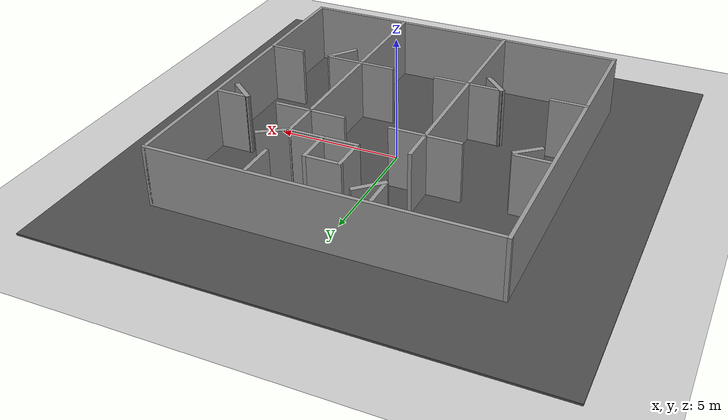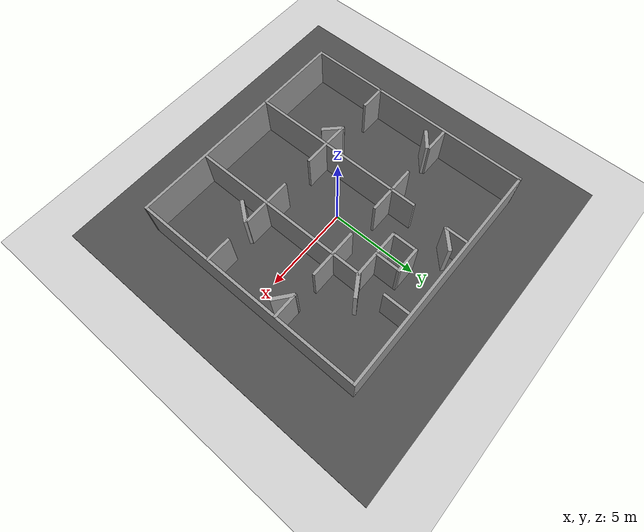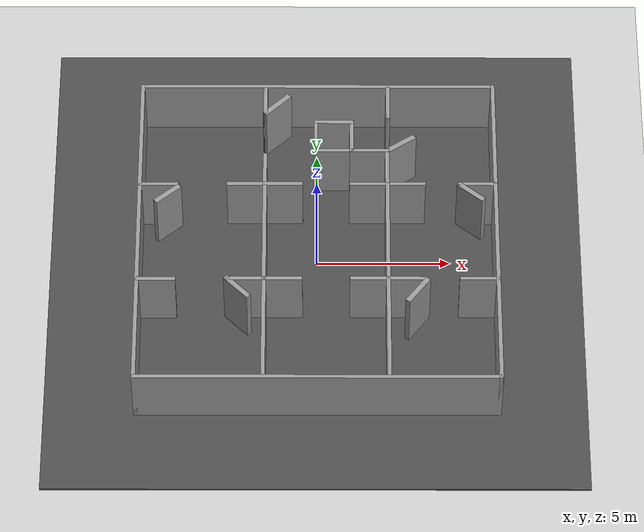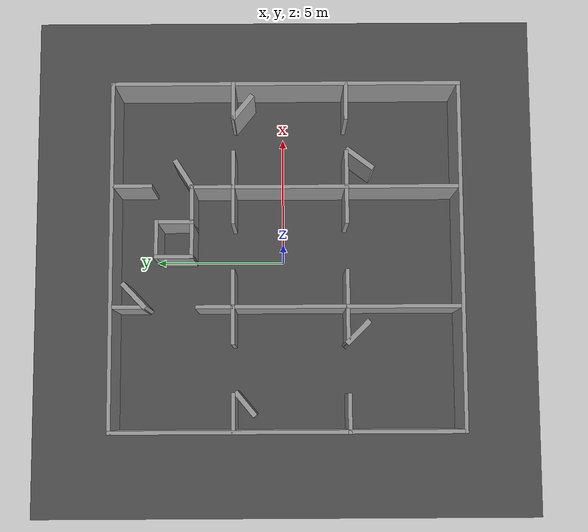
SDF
<sdf version="1.6">
 <world name="default">
  <model name="ground_plane">
   <static>1</static>
   <link name="link">
    <collision name="collision">
     <geometry><plane><normal>0 0 1</normal><size>100 100</size></plane></geometry>
     <surface><friction><ode><mu>100</mu><mu2>50</mu2></ode></friction></surface>
    </collision>
    <visual name="visual">
     <cast_shadows>0</cast_shadows>
     <geometry><plane><normal>0 0 1</normal><size>100 100</size></plane></geometry>
     <material>
      <script><uri>file://media/materials/scripts/gazebo.material</uri><name>Gazebo/Grey</name></script>
     </material>
    </visual>
   </link>
  </model>
  <gravity>0 0 -9.8</gravity>
  <magnetic_field>6e-06 2.3e-05 -4.2e-05</magnetic_field>
  <atmosphere type="adiabatic"/>
  <physics name="default_physics" default="0" type="ode">
   <max_step_size>0.001</max_step_size>
   <real_time_factor>1</real_time_factor>
   <real_time_update_rate>1000</real_time_update_rate>
  </physics>
  <scene><ambient>0.4 0.4 0.4 1</ambient><background>0.7 0.7 0.7 1</background><shadows>1</shadows></scene>
  <spherical_coordinates>
   <surface_model>EARTH_WGS84</surface_model>
   <latitude_deg>0</latitude_deg>
   <longitude_deg>0</longitude_deg>
   <elevation>0</elevation>
   <heading_deg>0</heading_deg>
  </spherical_coordinates>
  <model name="environment_test_fin">
   <pose>0.02168 -0.11557 0 0 -0 0</pose>
   <link name="Door_10">
    <collision name="Door_10_Collision">
     <geometry><box><size>1.172 0.2 2.5</size></box></geometry>
     <pose>0 0 1.25 0 -0 0</pose>
    </collision>
    <visual name="Door_10_Visual">
     <pose>0 0 1.25 0 -0 0</pose>
     <geometry><box><size>1.172 0.2 2.5</size></box></geometry>
     <material>
      <script><uri>file://media/materials/scripts/gazebo.material</uri><name>Gazebo/Grey</name></script>
     </material>
    </visual>
    <pose>-5.62671 1.56896 0 0 0 -2.45096</pose>
   </link>
   <link name="Door_11">
    <collision name="Door_11_Collision">
     <geometry><box><size>1.24 0.2 2.5</size></box></geometry>
     <pose>0 0 1.25 0 -0 0</pose>
    </collision>
    <visual name="Door_11_Visual">
     <pose>0 0 1.25 0 -0 0</pose>
     <geometry><box><size>1.24 0.2 2.5</size></box></geometry>
     <material>
      <script><uri>file://media/materials/scripts/gazebo.material</uri><name>Gazebo/Grey</name></script>
     </material>
    </visual>
    <pose>-2.96588 -2.69291 0 0 0 -0.787831</pose>
   </link>
   <link name="Door_4">
    <collision name="Door_4_Collision">
     <geometry><box><size>1.295 0.2 2.5</size></box></geometry>
     <pose>0 0 1.25 0 -0 0</pose>
    </collision>
    <visual name="Door_4_Visual">
     <pose>0 0 1.25 0 -0 0</pose>
     <geometry><box><size>1.295 0.2 2.5</size></box></geometry>
     <material>
      <script><uri>file://media/materials/scripts/gazebo.material</uri><name>Gazebo/Grey</name></script>
     </material>
    </visual>
    <pose>-1.54126 5.7926 0 0 -0 0.756347</pose>
   </link>
   <link name="Door_6">
    <collision name="Door_6_Collision">
     <geometry><box><size>1.25979 0.2 2.5</size></box></geometry>
     <pose>0 0 1.25 0 -0 0</pose>
    </collision>
    <visual name="Door_6_Visual">
     <pose>0 0 1.25 0 -0 0</pose>
     <geometry><box><size>1.25979 0.2 2.5</size></box></geometry>
     <material>
      <script><uri>file://media/materials/scripts/gazebo.material</uri><name>Gazebo/Grey</name></script>
     </material>
    </visual>
    <pose>3.1422 3.93186 0 0 -0 0.563677</pose>
   </link>
   <link name="Door_8">
    <collision name="Door_8_Collision">
     <geometry><box><size>1.208 0.2 2.5</size></box></geometry>
     <pose>0 0 1.25 0 -0 0</pose>
    </collision>
    <visual name="Door_8_Visual">
     <pose>0 0 1.25 0 -0 0</pose>
     <geometry><box><size>1.208 0.2 2.5</size></box></geometry>
     <material>
      <script><uri>file://media/materials/scripts/gazebo.material</uri><name>Gazebo/Grey</name></script>
     </material>
    </visual>
    <pose>5.75472 1.66846 0 0 0 -0.677964</pose>
   </link>
   <link name="Door_9">
    <collision name="Door_9_Collision">
     <geometry><box><size>1.289 0.2 2.5</size></box></geometry>
     <pose>0 0 1.25 0 -0 0</pose>
    </collision>
    <visual name="Door_9_Visual">
     <pose>0 0 1.25 0 -0 0</pose>
     <geometry><box><size>1.289 0.2 2.5</size></box></geometry>
     <material>
      <script><uri>file://media/materials/scripts/gazebo.material</uri><name>Gazebo/Grey</name></script>
     </material>
    </visual>
    <pose>3.70595 -2.82807 0 0 0 -2.21715</pose>
   </link>
   <link name="Wall_1">
    <collision name="Wall_1_Collision">
     <geometry><box><size>13.5 0.15 2.5</size></box></geometry>
     <pose>0 0 1.25 0 -0 0</pose>
    </collision>
    <visual name="Wall_1_Visual">
     <pose>0 0 1.25 0 -0 0</pose>
     <geometry><box><size>13.5 0.15 2.5</size></box></geometry>
     <material>
      <script><uri>file://media/materials/scripts/gazebo.material</uri><name>Gazebo/Grey</name></script>
      <ambient>1 1 1 1</ambient>
     </material>
     <meta><layer>0</layer></meta>
    </visual>
    <pose>-6.675 0 0 0 0 -1.5708</pose>
   </link>
   <link name="Wall_11">
    <collision name="Wall_11_Collision">
     <geometry><box><size>4.5 0.15 2.5</size></box></geometry>
     <pose>0 0 1.25 0 -0 0</pose>
    </collision>
    <visual name="Wall_11_Visual">
     <pose>0 0 1.25 0 -0 0</pose>
     <geometry><box><size>4.5 0.15 2.5</size></box></geometry>
     <material>
      <script><uri>file://media/materials/scripts/gazebo.material</uri><name>Gazebo/Grey</name></script>
      <ambient>1 1 1 1</ambient>
     </material>
     <meta><layer>0</layer></meta>
    </visual>
    <pose>-1.98339 -4.48947 0 0 -0 1.5708</pose>
   </link>
   <link name="Wall_14">
    <collision name="Wall_14_Collision">
     <geometry><box><size>4.5 0.15 2.5</size></box></geometry>
     <pose>0 0 1.25 0 -0 0</pose>
    </collision>
    <visual name="Wall_14_Visual">
     <pose>0 0 1.25 0 -0 0</pose>
     <geometry><box><size>4.5 0.15 2.5</size></box></geometry>
     <material>
      <script><uri>file://media/materials/scripts/gazebo.material</uri><name>Gazebo/Grey</name></script>
      <ambient>1 1 1 1</ambient>
     </material>
     <meta><layer>0</layer></meta>
    </visual>
    <pose>2.6196 -4.48947 0 0 -0 1.5708</pose>
   </link>
   <link name="Wall_16">
    <collision name="Wall_16_Collision">
     <geometry><box><size>1.5 0.15 2.5</size></box></geometry>
     <pose>0 0 1.25 0 -0 0</pose>
    </collision>
    <visual name="Wall_16_Visual">
     <pose>0 0 1.25 0 -0 0</pose>
     <geometry><box><size>1.5 0.15 2.5</size></box></geometry>
     <material>
      <script><uri>file://media/materials/scripts/gazebo.material</uri><name>Gazebo/Grey</name></script>
      <ambient>1 1 1 1</ambient>
     </material>
     <meta><layer>0</layer></meta>
    </visual>
    <pose>-1.30839 -2.31447 0 0 -0 0</pose>
   </link>
   <link name="Wall_18">
    <collision name="Wall_18_Collision">
     <geometry><box><size>1.5 0.15 2.5</size></box></geometry>
     <pose>0 0 1.25 0 -0 0</pose>
    </collision>
    <visual name="Wall_18_Visual">
     <pose>0 0 1.25 0 -0 0</pose>
     <geometry><box><size>1.5 0.15 2.5</size></box></geometry>
     <material>
      <script><uri>file://media/materials/scripts/gazebo.material</uri><name>Gazebo/Grey</name></script>
      <ambient>1 1 1 1</ambient>
     </material>
     <meta><layer>0</layer></meta>
    </visual>
    <pose>1.9446 -2.31447 0 0 -0 3.14159</pose>
   </link>
   <link name="Wall_20">
    <collision name="Wall_20_Collision">
     <geometry><box><size>4.5 0.15 2.5</size></box></geometry>
     <pose>0 0 1.25 0 -0 0</pose>
    </collision>
    <visual name="Wall_20_Visual">
     <pose>0 0 1.25 0 -0 0</pose>
     <geometry><box><size>4.5 0.15 2.5</size></box></geometry>
     <material>
      <script><uri>file://media/materials/scripts/gazebo.material</uri><name>Gazebo/Grey</name></script>
      <ambient>1 1 1 1</ambient>
     </material>
     <meta><layer>0</layer></meta>
    </visual>
    <pose>-1.98339 -0.139468 0 0 -0 1.5708</pose>
   </link>
   <link name="Wall_22">
    <collision name="Wall_22_Collision">
     <geometry><box><size>4.5 0.15 2.5</size></box></geometry>
     <pose>0 0 1.25 0 -0 0</pose>
    </collision>
    <visual name="Wall_22_Visual">
     <pose>0 0 1.25 0 -0 0</pose>
     <geometry><box><size>4.5 0.15 2.5</size></box></geometry>
     <material>
      <script><uri>file://media/materials/scripts/gazebo.material</uri><name>Gazebo/Grey</name></script>
      <ambient>1 1 1 1</ambient>
     </material>
     <meta><layer>0</layer></meta>
    </visual>
    <pose>2.6196 -0.139468 0 0 -0 1.5708</pose>
   </link>
   <link name="Wall_23">
    <collision name="Wall_23_Collision">
     <geometry><box><size>1.5 0.15 2.5</size></box></geometry>
     <pose>0 0 1.25 0 -0 0</pose>
    </collision>
    <visual name="Wall_23_Visual">
     <pose>0 0 1.25 0 -0 0</pose>
     <geometry><box><size>1.5 0.15 2.5</size></box></geometry>
     <material>
      <script><uri>file://media/materials/scripts/gazebo.material</uri><name>Gazebo/Grey</name></script>
      <ambient>1 1 1 1</ambient>
     </material>
     <meta><layer>0</layer></meta>
    </visual>
    <pose>1.9446 2.03553 0 0 -0 3.14159</pose>
   </link>
   <link name="Wall_25">
    <collision name="Wall_25_Collision">
     <geometry><box><size>1.5 0.15 2.5</size></box></geometry>
     <pose>0 0 1.25 0 -0 0</pose>
    </collision>
    <visual name="Wall_25_Visual">
     <pose>0 0 1.25 0 -0 0</pose>
     <geometry><box><size>1.5 0.15 2.5</size></box></geometry>
     <material>
      <script><uri>file://media/materials/scripts/gazebo.material</uri><name>Gazebo/Grey</name></script>
      <ambient>1 1 1 1</ambient>
     </material>
     <meta><layer>0</layer></meta>
    </visual>
    <pose>-1.30839 2.03553 0 0 -0 0</pose>
   </link>
   <link name="Wall_3">
    <collision name="Wall_3_Collision">
     <geometry><box><size>13.5 0.15 2.5</size></box></geometry>
     <pose>0 0 1.25 0 -0 0</pose>
    </collision>
    <visual name="Wall_3_Visual">
     <pose>0 0 1.25 0 -0 0</pose>
     <geometry><box><size>13.5 0.15 2.5</size></box></geometry>
     <material>
      <script><uri>file://media/materials/scripts/gazebo.material</uri><name>Gazebo/Grey</name></script>
      <ambient>1 1 1 1</ambient>
     </material>
     <meta><layer>0</layer></meta>
    </visual>
    <pose>0 6.675 0 0 -0 0</pose>
   </link>
   <link name="Wall_5">
    <collision name="Wall_5_Collision">
     <geometry><box><size>13.5 0.15 2.5</size></box></geometry>
     <pose>0 0 1.25 0 -0 0</pose>
    </collision>
    <visual name="Wall_5_Visual">
     <pose>0 0 1.25 0 -0 0</pose>
     <geometry><box><size>13.5 0.15 2.5</size></box></geometry>
     <material>
      <script><uri>file://media/materials/scripts/gazebo.material</uri><name>Gazebo/Grey</name></script>
      <ambient>1 1 1 1</ambient>
     </material>
     <meta><layer>0</layer></meta>
    </visual>
    <pose>0 -6.675 0 0 -0 0</pose>
   </link>
   <link name="Wall_53">
    <collision name="Wall_53_Collision">
     <geometry><box><size>1.5 0.15 2.5</size></box></geometry>
     <pose>0 0 1.25 0 -0 0</pose>
    </collision>
    <visual name="Wall_53_Visual">
     <pose>0 0 1.25 0 -0 0</pose>
     <geometry><box><size>1.5 0.15 2.5</size></box></geometry>
     <material>
      <script><uri>file://media/materials/scripts/gazebo.material</uri><name>Gazebo/Grey</name></script>
      <ambient>1 1 1 1</ambient>
     </material>
     <meta><layer>0</layer></meta>
    </visual>
    <pose>1.95788 3.61152 0 0 -0 0</pose>
   </link>
   <link name="Wall_55">
    <collision name="Wall_55_Collision">
     <geometry><box><size>1.75 0.15 2.5</size></box></geometry>
     <pose>0 0 1.25 0 -0 0</pose>
    </collision>
    <visual name="Wall_55_Visual">
     <pose>0 0 1.25 0 -0 0</pose>
     <geometry><box><size>1.75 0.15 2.5</size></box></geometry>
     <material>
      <script><uri>file://media/materials/scripts/gazebo.material</uri><name>Gazebo/Grey</name></script>
      <ambient>1 1 1 1</ambient>
     </material>
     <meta><layer>0</layer></meta>
    </visual>
    <pose>2.6196 2.83553 0 0 -0 1.5708</pose>
   </link>
   <link name="Wall_57">
    <collision name="Wall_57_Collision">
     <geometry><box><size>1.5 0.15 2.5</size></box></geometry>
     <pose>0 0 1.25 0 -0 0</pose>
    </collision>
    <visual name="Wall_57_Visual">
     <pose>0 0 1.25 0 -0 0</pose>
     <geometry><box><size>1.5 0.15 2.5</size></box></geometry>
     <material>
      <script><uri>file://media/materials/scripts/gazebo.material</uri><name>Gazebo/Grey</name></script>
      <ambient>1 1 1 1</ambient>
     </material>
     <meta><layer>0</layer></meta>
    </visual>
    <pose>2.6674 5.88314 0 0 -0 1.5708</pose>
   </link>
   <link name="Wall_59">
    <collision name="Wall_59_Collision">
     <geometry><box><size>1.5 0.15 2.5</size></box></geometry>
     <pose>0 0 1.25 0 -0 0</pose>
    </collision>
    <visual name="Wall_59_Visual">
     <pose>0 0 1.25 0 -0 0</pose>
     <geometry><box><size>1.5 0.15 2.5</size></box></geometry>
     <material>
      <script><uri>file://media/materials/scripts/gazebo.material</uri><name>Gazebo/Grey</name></script>
      <ambient>1 1 1 1</ambient>
     </material>
     <meta><layer>0</layer></meta>
    </visual>
    <pose>3.2946 2.03553 0 0 -0 0</pose>
   </link>
   <link name="Wall_61">
    <collision name="Wall_61_Collision">
     <geometry><box><size>1.5 0.15 2.5</size></box></geometry>
     <pose>0 0 1.25 0 -0 0</pose>
    </collision>
    <visual name="Wall_61_Visual">
     <pose>0 0 1.25 0 -0 0</pose>
     <geometry><box><size>1.5 0.15 2.5</size></box></geometry>
     <material>
      <script><uri>file://media/materials/scripts/gazebo.material</uri><name>Gazebo/Grey</name></script>
      <ambient>1 1 1 1</ambient>
     </material>
     <meta><layer>0</layer></meta>
    </visual>
    <pose>5.99938 2.0297 0 0 -0 3.14159</pose>
   </link>
   <link name="Wall_63">
    <collision name="Wall_63_Collision">
     <geometry><box><size>1.5 0.15 2.5</size></box></geometry>
     <pose>0 0 1.25 0 -0 0</pose>
    </collision>
    <visual name="Wall_63_Visual">
     <pose>0 0 1.25 0 -0 0</pose>
     <geometry><box><size>1.5 0.15 2.5</size></box></geometry>
     <material>
      <script><uri>file://media/materials/scripts/gazebo.material</uri><name>Gazebo/Grey</name></script>
      <ambient>1 1 1 1</ambient>
     </material>
     <meta><layer>0</layer></meta>
    </visual>
    <pose>-2.65839 2.03553 0 0 -0 3.14159</pose>
   </link>
   <link name="Wall_65">
    <collision name="Wall_65_Collision">
     <geometry><box><size>1.5 0.15 2.5</size></box></geometry>
     <pose>0 0 1.25 0 -0 0</pose>
    </collision>
    <visual name="Wall_65_Visual">
     <pose>0 0 1.25 0 -0 0</pose>
     <geometry><box><size>1.5 0.15 2.5</size></box></geometry>
     <material>
      <script><uri>file://media/materials/scripts/gazebo.material</uri><name>Gazebo/Grey</name></script>
      <ambient>1 1 1 1</ambient>
     </material>
     <meta><layer>0</layer></meta>
    </visual>
    <pose>-5.95374 2.01691 0 0 -0 0</pose>
   </link>
   <link name="Wall_67">
    <collision name="Wall_67_Collision">
     <geometry><box><size>1.5 0.15 2.5</size></box></geometry>
     <pose>0 0 1.25 0 -0 0</pose>
    </collision>
    <visual name="Wall_67_Visual">
     <pose>0 0 1.25 0 -0 0</pose>
     <geometry><box><size>1.5 0.15 2.5</size></box></geometry>
     <material>
      <script><uri>file://media/materials/scripts/gazebo.material</uri><name>Gazebo/Grey</name></script>
      <ambient>1 1 1 1</ambient>
     </material>
     <meta><layer>0</layer></meta>
    </visual>
    <pose>3.2946 -2.31447 0 0 -0 0</pose>
   </link>
   <link name="Wall_69">
    <collision name="Wall_69_Collision">
     <geometry><box><size>1.5 0.15 2.5</size></box></geometry>
     <pose>0 0 1.25 0 -0 0</pose>
    </collision>
    <visual name="Wall_69_Visual">
     <pose>0 0 1.25 0 -0 0</pose>
     <geometry><box><size>1.5 0.15 2.5</size></box></geometry>
     <material>
      <script><uri>file://media/materials/scripts/gazebo.material</uri><name>Gazebo/Grey</name></script>
      <ambient>1 1 1 1</ambient>
     </material>
     <meta><layer>0</layer></meta>
    </visual>
    <pose>5.99726 -2.31521 0 0 -0 3.14159</pose>
   </link>
   <link name="Wall_7">
    <collision name="Wall_7_Collision">
     <geometry><box><size>13.5 0.15 2.5</size></box></geometry>
     <pose>0 0 1.25 0 -0 0</pose>
    </collision>
    <visual name="Wall_7_Visual">
     <pose>0 0 1.25 0 -0 0</pose>
     <geometry><box><size>13.5 0.15 2.5</size></box></geometry>
     <material>
      <script><uri>file://media/materials/scripts/gazebo.material</uri><name>Gazebo/Grey</name></script>
      <ambient>1 1 1 1</ambient>
     </material>
     <meta><layer>0</layer></meta>
    </visual>
    <pose>6.675 0 0 0 0 -1.5708</pose>
   </link>
   <link name="Wall_71">
    <collision name="Wall_71_Collision">
     <geometry><box><size>1.5 0.15 2.5</size></box></geometry>
     <pose>0 0 1.25 0 -0 0</pose>
    </collision>
    <visual name="Wall_71_Visual">
     <pose>0 0 1.25 0 -0 0</pose>
     <geometry><box><size>1.5 0.15 2.5</size></box></geometry>
     <material>
      <script><uri>file://media/materials/scripts/gazebo.material</uri><name>Gazebo/Grey</name></script>
      <ambient>1 1 1 1</ambient>
     </material>
     <meta><layer>0</layer></meta>
    </visual>
    <pose>-2.65839 -2.31447 0 0 -0 3.14159</pose>
   </link>
   <link name="Wall_73">
    <collision name="Wall_73_Collision">
     <geometry><box><size>1.5 0.15 2.5</size></box></geometry>
     <pose>0 0 1.25 0 -0 0</pose>
    </collision>
    <visual name="Wall_73_Visual">
     <pose>0 0 1.25 0 -0 0</pose>
     <geometry><box><size>1.5 0.15 2.5</size></box></geometry>
     <material>
      <script><uri>file://media/materials/scripts/gazebo.material</uri><name>Gazebo/Grey</name></script>
      <ambient>1 1 1 1</ambient>
     </material>
     <meta><layer>0</layer></meta>
    </visual>
    <pose>-5.99981 -2.34775 0 0 -0 0</pose>
   </link>
   <link name="Wall_77">
    <collision name="Wall_77_Collision">
     <geometry><box><size>1.25 0.15 2.5</size></box></geometry>
     <pose>0 0 1.25 0 -0 0</pose>
    </collision>
    <visual name="Wall_77_Visual">
     <pose>0 0 1.25 0 -0 0</pose>
     <geometry><box><size>1.25 0.15 2.5</size></box></geometry>
     <material>
      <script><uri>file://media/materials/scripts/gazebo.material</uri><name>Gazebo/Grey</name></script>
      <ambient>1 1 1 1</ambient>
     </material>
     <meta><layer>0</layer></meta>
    </visual>
    <pose>-1.98053 6.00683 0 0 -0 1.5708</pose>
   </link>
   <link name="Wall_79">
    <collision name="Wall_79_Collision">
     <geometry><box><size>1.5 0.15 2.5</size></box></geometry>
     <pose>0 0 1.25 0 -0 0</pose>
    </collision>
    <visual name="Wall_79_Visual">
     <pose>0 0 1.25 0 -0 0</pose>
     <geometry><box><size>1.5 0.15 2.5</size></box></geometry>
     <material>
      <script><uri>file://media/materials/scripts/gazebo.material</uri><name>Gazebo/Grey</name></script>
      <ambient>1 1 1 1</ambient>
     </material>
     <meta><layer>0</layer></meta>
    </visual>
    <pose>-1.98339 2.71053 0 0 -0 1.5708</pose>
   </link>
   <link name="Wall_87">
    <collision name="Wall_87_Collision">
     <geometry><box><size>1.5 0.15 2.5</size></box></geometry>
     <pose>0 0 1.25 0 -0 0</pose>
    </collision>
    <visual name="Wall_87_Visual">
     <pose>0 0 1.25 0 -0 0</pose>
     <geometry><box><size>1.5 0.15 2.5</size></box></geometry>
     <material>
      <script><uri>file://media/materials/scripts/gazebo.material</uri><name>Gazebo/Grey</name></script>
      <ambient>1 1 1 1</ambient>
     </material>
     <meta><layer>0</layer></meta>
    </visual>
    <pose>1.28287 4.28652 0 0 -0 1.5708</pose>
   </link>
   <link name="Wall_88">
    <collision name="Wall_88_Collision">
     <geometry><box><size>1.5 0.15 2.5</size></box></geometry>
     <pose>0 0 1.25 0 -0 0</pose>
    </collision>
    <visual name="Wall_88_Visual">
     <pose>0 0 1.25 0 -0 0</pose>
     <geometry><box><size>1.5 0.15 2.5</size></box></geometry>
     <material>
      <script><uri>file://media/materials/scripts/gazebo.material</uri><name>Gazebo/Grey</name></script>
      <ambient>1 1 1 1</ambient>
     </material>
     <meta><layer>0</layer></meta>
    </visual>
    <pose>0.607875 4.96152 0 0 -0 3.14159</pose>
   </link>
   <link name="Wall_89">
    <collision name="Wall_89_Collision">
     <geometry><box><size>1.5 0.15 2.5</size></box></geometry>
     <pose>0 0 1.25 0 -0 0</pose>
    </collision>
    <visual name="Wall_89_Visual">
     <pose>0 0 1.25 0 -0 0</pose>
     <geometry><box><size>1.5 0.15 2.5</size></box></geometry>
     <material>
      <script><uri>file://media/materials/scripts/gazebo.material</uri><name>Gazebo/Grey</name></script>
      <ambient>1 1 1 1</ambient>
     </material>
     <meta><layer>0</layer></meta>
    </visual>
    <pose>-0.067125 4.28652 0 0 0 -1.5708</pose>
   </link>
   <link name="Wall_90">
    <collision name="Wall_90_Collision">
     <geometry><box><size>1.5 0.15 2.5</size></box></geometry>
     <pose>0 0 1.25 0 -0 0</pose>
    </collision>
    <visual name="Wall_90_Visual">
     <pose>0 0 1.25 0 -0 0</pose>
     <geometry><box><size>1.5 0.15 2.5</size></box></geometry>
     <material>
      <script><uri>file://media/materials/scripts/gazebo.material</uri><name>Gazebo/Grey</name></script>
      <ambient>1 1 1 1</ambient>
     </material>
     <meta><layer>0</layer></meta>
    </visual>
    <pose>0.607875 3.61152 0 0 -0 0</pose>
   </link>
   <static>1</static>
  </model>
  <light name="user_directional_light_0" type="directional">
   <pose>0.513855 0.408459 1 0 -0 0</pose>
   <diffuse>0.5 0.5 0.5 1</diffuse>
   <specular>0.1 0.1 0.1 1</specular>
   <direction>0.1 0.1 -0.9</direction>
   <attenuation>
    <range>20</range>
    <constant>0.5</constant>
    <linear>0.01</linear>
    <quadratic>0.001</quadratic>
   </attenuation>
  </light>
  <light name="user_directional_light_1" type="directional">
   <pose>0.426464 0.376792 1 0 -0 0</pose>
   <diffuse>0.5 0.5 0.5 1</diffuse>
   <specular>0.1 0.1 0.1 1</specular>
   <direction>0.1 0.1 -0.9</direction>
   <attenuation>
    <range>20</range>
    <constant>0.5</constant>
    <linear>0.01</linear>
    <quadratic>0.001</quadratic>
   </attenuation>
  </light>
  <model name="asphalt_plane">
   <static>1</static>
   <link name="link">
    <collision name="collision"><geometry><box><size>20 20 0.1</size></box></geometry></collision>
    <visual name="visual">
     <cast_shadows>0</cast_shadows>
     <geometry><box><size>20 20 0.1</size></box></geometry>
     <material>
      <script>
       <uri>model://asphalt_plane/materials/scripts</uri>
       <uri>model://asphalt_plane/materials/textures</uri>
       <name>vrc/asphalt</name>
      </script>
     </material>
    </visual>
   </link>
   <pose>-0.044261 -0.066096 0 0 -0 0</pose>
  </model>
  <light name="user_spot_light_0" type="spot">
   <pose>6.03509 -5.87294 1 0 -0 0</pose>
   <diffuse>0.5 0.5 0.5 1</diffuse>
   <specular>0.1 0.1 0.1 1</specular>
   <direction>0 0 -1</direction>
   <attenuation>
    <range>20</range>
    <constant>0.5</constant>
    <linear>0.01</linear>
    <quadratic>0.001</quadratic>
   </attenuation>
   <cast_shadows>0</cast_shadows>
   <spot><inner_angle>0.6</inner_angle><outer_angle>1</outer_angle><falloff>1</falloff></spot>
  </light>
 </world>
</sdf>
